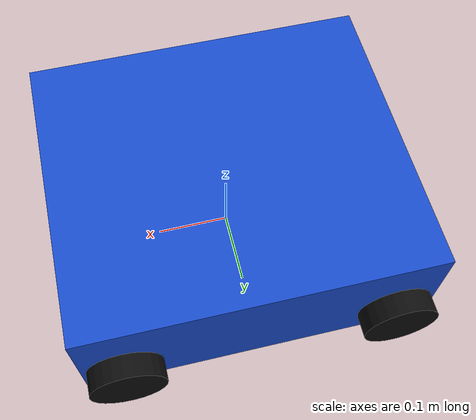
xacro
<?xml version="1.0"?>
<robot xmlns:xacro="http://www.ros.org/wiki/xacro" name="rox2026">
  <xacro:property name="body_length" value="0.47"/>
  <xacro:property name="body_width" value="0.41"/>
  <xacro:property name="body_height" value="0.16"/>
  <xacro:property name="wheel_radius" value="0.05"/>
  <xacro:property name="wheel_width" value="0.03"/>

  <link name="base_footprint"/>
  <link name="base_link">
    <visual><origin xyz="0 0 0.08"/><geometry><box size="${body_length} ${body_width} ${body_height}"/></geometry><material name="blue"><color rgba="0.1 0.3 0.8 1"/></material></visual>
    <collision><origin xyz="0 0 0.08"/><geometry><box size="${body_length} ${body_width} ${body_height}"/></geometry></collision>
    <inertial><origin xyz="0 0 0.08"/><mass value="20.0"/><inertia ixx="0.35" ixy="0" ixz="0" iyy="0.42" iyz="0" izz="0.65"/></inertial>
  </link>
  <joint name="base_footprint_joint" type="fixed"><parent link="base_footprint"/><child link="base_link"/></joint>

  <xacro:macro name="wheel" params="name x y">
    <link name="${name}"><visual><geometry><cylinder radius="${wheel_radius}" length="${wheel_width}"/></geometry><material name="black"><color rgba="0.05 0.05 0.05 1"/></material></visual></link>
    <joint name="${name}_joint" type="fixed"><parent link="base_link"/><child link="${name}"/><origin xyz="${x} ${y} ${wheel_radius}" rpy="1.5708 0 0"/></joint>
  </xacro:macro>
  <xacro:wheel name="front_left_wheel" x="0.18" y="0.22"/>
  <xacro:wheel name="front_right_wheel" x="0.18" y="-0.22"/>
  <xacro:wheel name="rear_left_wheel" x="-0.18" y="0.22"/>
  <xacro:wheel name="rear_right_wheel" x="-0.18" y="-0.22"/>

  <link name="imu_link"/>
  <joint name="imu_joint" type="fixed"><parent link="base_link"/><child link="imu_link"/><origin xyz="0 0 0.12"/></joint>
  <link name="camera_link"/>
  <joint name="camera_joint" type="fixed"><parent link="base_link"/><child link="camera_link"/><origin xyz="0.18 0 0.22" rpy="0 0 0"/></joint>
</robot>
